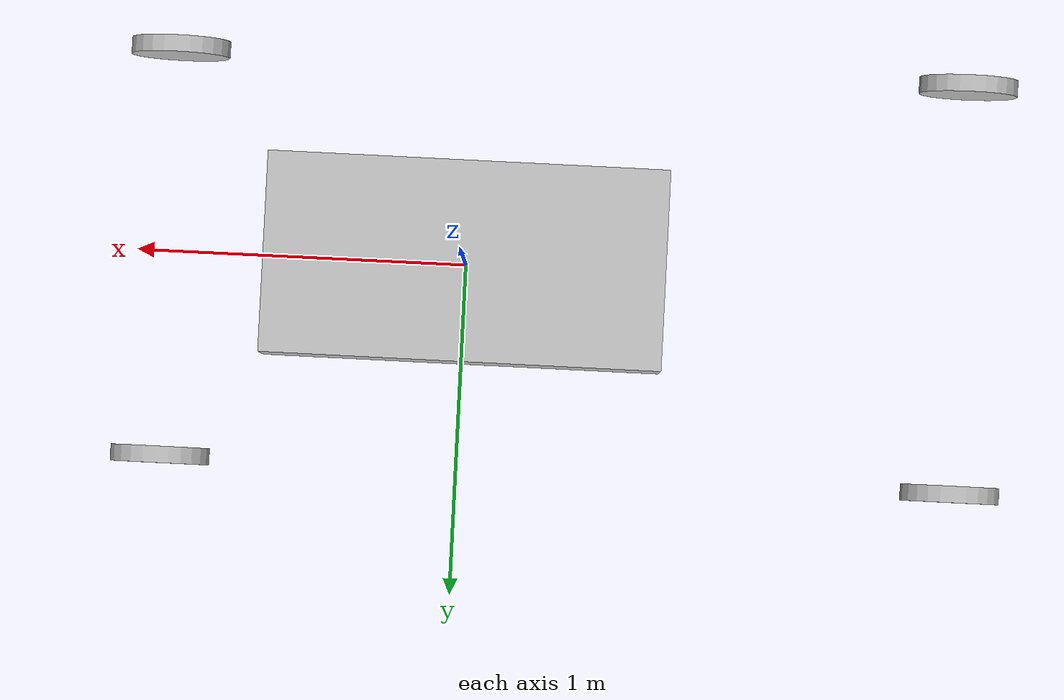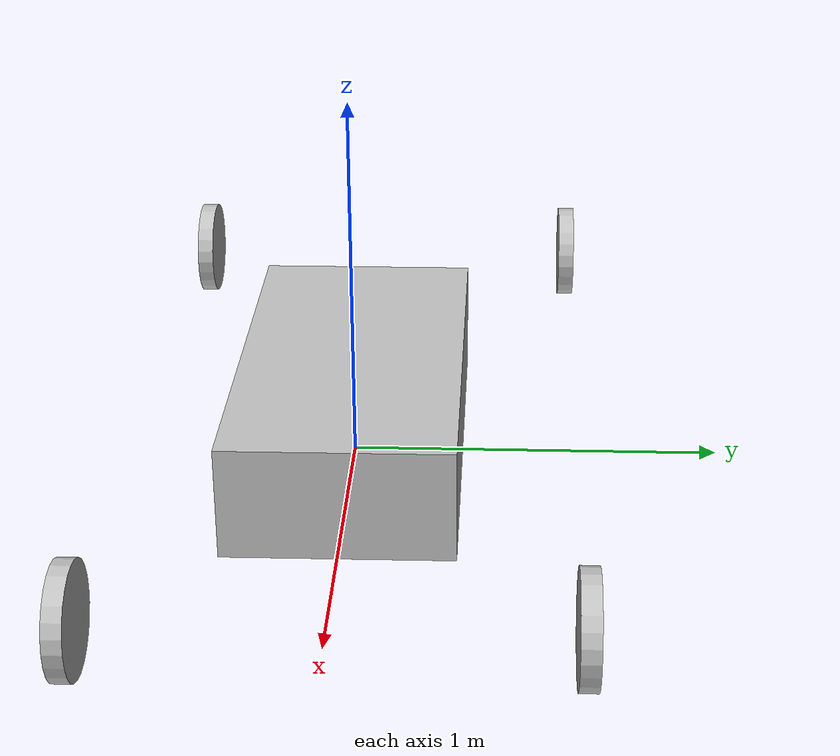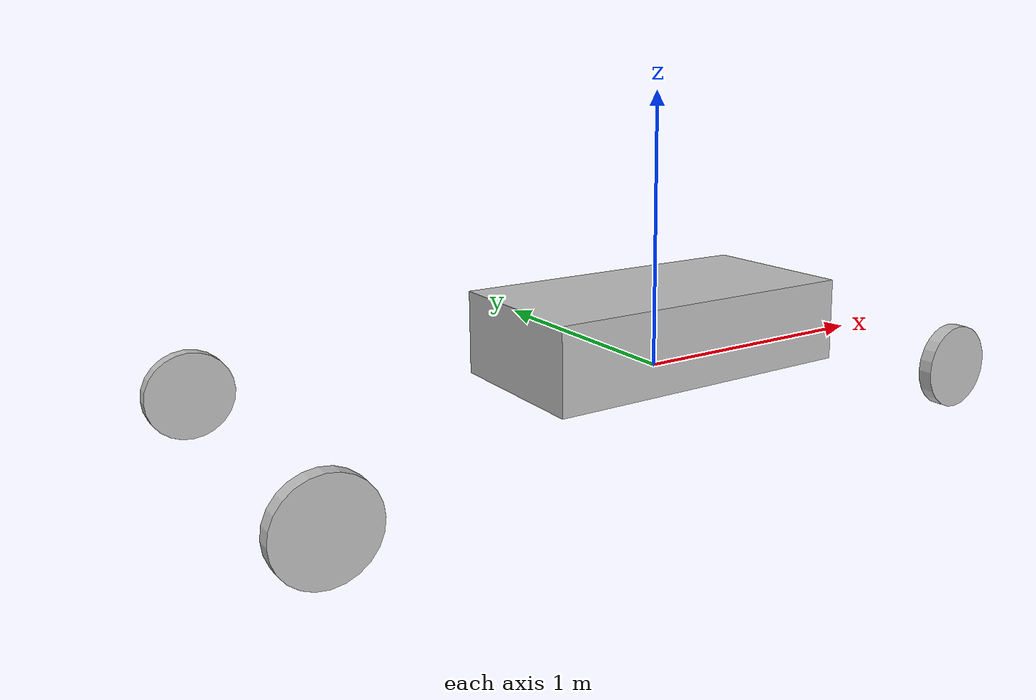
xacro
<?xml version="1.0"?>
<robot name="cyber_truck_bot" xmlns:xacro="http://www.ros.org/wiki/xacro">

  <!-- Parameters -->
  <xacro:property name="body_length" value="1.2" />
  <xacro:property name="body_width" value="0.6" />
  <xacro:property name="body_height" value="0.3" />
  <xacro:property name="wheel_radius" value="0.15" />
  <xacro:property name="wheel_width" value="0.05" />

  <!-- Material -->
  <material name="silver">
    <color rgba="0.75 0.75 0.75 1" />
  </material>

  <!-- Base Footprint -->
  <link name="base_footprint"/>

  <!-- Body -->
  <link name="base_link">
    <visual>
      <geometry>
        <box size="${body_length} ${body_width} ${body_height}" />
      </geometry>
      <origin xyz="0 0 ${body_height/2}" rpy="0 0 0" />
      <material name="silver"/>
    </visual>
  </link>

  <!-- Wheels -->
  <xacro:macro name="wheel" params="name x y z">
    <link name="${name}">
      <visual>
        <geometry>
          <cylinder radius="${wheel_radius}" length="${wheel_width}" />
        </geometry>
        <origin xyz="${x} ${y} ${z}" rpy="${pi / 2} 0 0" />
        <material name="silver" />
      </visual>
    </link>
    <joint name="${name}_joint" type="continuous">
      <parent link="base_link" />
      <child link="${name}" />
      <origin xyz="${x} ${y} ${z}" rpy="0 0 0" />
      <axis xyz="0 1 0" />
    </joint>
  </xacro:macro>

  <!-- All 4 wheels -->
  <xacro:wheel name="front_left_wheel"  x="${body_length/2 - 0.15}" y="${ body_width/2 + 0.01}" z="0" />
  <xacro:wheel name="front_right_wheel" x="${body_length/2 - 0.15}" y="-${body_width/2 + 0.01}" z="0" />
  <xacro:wheel name="rear_left_wheel"   x="-${body_length/2 + 0.15}" y="${ body_width/2 + 0.01}" z="0" />
  <xacro:wheel name="rear_right_wheel"  x="-${body_length/2 + 0.15}" y="-${body_width/2 + 0.01}" z="0" />

  <!-- Joint for base_link to base_footprint -->
  <joint name="base_joint" type="fixed">
    <parent link="base_footprint"/>
    <child link="base_link"/>
    <origin xyz="0 0 0" rpy="0 0 0"/>
  </joint>

</robot>
